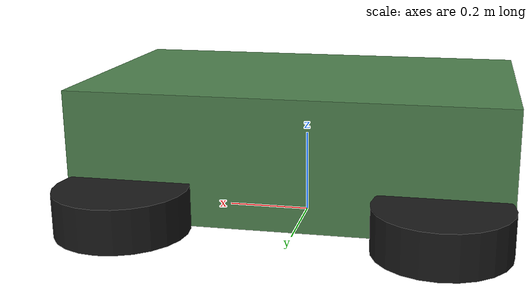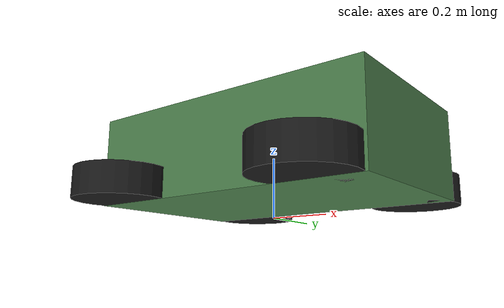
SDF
<?xml version="1.0" ?>
<sdf version="1.6">
  <model name="ugv_rover">
    <static>false</static>

    <link name="chassis">
      <pose>0 0 0.2 0 0 0</pose>
      <inertial>
        <mass>20</mass>
        <inertia>
          <ixx>0.834</ixx>
          <iyy>1.667</iyy>
          <izz>2.5</izz>
        </inertia>
      </inertial>

      <visual name="chassis_visual">
        <geometry>
          <box>
            <size>1.0 0.6 0.3</size>
          </box>
        </geometry>
        <material>
          <ambient>0.3 0.5 0.3 1</ambient>
          <diffuse>0.3 0.5 0.3 1</diffuse>
        </material>
      </visual>

      <collision name="chassis_collision">
        <geometry>
          <box>
            <size>1.0 0.6 0.3</size>
          </box>
        </geometry>
      </collision>

      <!-- IMU -->
      <sensor name="imu_sensor" type="imu">
        <always_on>true</always_on>
        <update_rate>100</update_rate>
        <plugin filename="libgazebo_ros_imu_sensor.so" name="imu_plugin">
          <robotNamespace>/ugv</robotNamespace>
          <topicName>imu/data</topicName>
        </plugin>
      </sensor>

      <!-- GPS -->
      <sensor name="gps" type="gps">
        <always_on>true</always_on>
        <update_rate>10</update_rate>
        <plugin filename="libgazebo_ros_gps_sensor.so" name="gps_plugin">
          <robotNamespace>/ugv</robotNamespace>
          <topicName>gps/fix</topicName>
        </plugin>
      </sensor>

      <!-- 2D Lidar -->
      <sensor name="lidar_2d" type="ray">
        <pose>0.5 0 0.1 0 0 0</pose>
        <ray>
          <scan>
            <horizontal>
              <samples>720</samples>
              <resolution>1</resolution>
              <min_angle>-3.14159</min_angle>
              <max_angle>3.14159</max_angle>
            </horizontal>
          </scan>
          <range>
            <min>0.15</min>
            <max>30</max>
            <resolution>0.01</resolution>
          </range>
        </ray>
        <always_on>true</always_on>
        <update_rate>20</update_rate>
        <plugin filename="libgazebo_ros_laser.so" name="lidar_plugin">
          <robotNamespace>/ugv</robotNamespace>
          <topicName>scan</topicName>
          <frameName>laser_link</frameName>
        </plugin>
      </sensor>

      <!-- RGB-D Camera -->
      <sensor name="rgbd_camera" type="depth">
        <pose>0.4 0 0.2 0 0 0</pose>
        <camera>
          <horizontal_fov>1.047</horizontal_fov>
          <image>
            <width>640</width>
            <height>480</height>
          </image>
          <clip>
            <near>0.1</near>
            <far>10</far>
          </clip>
        </camera>
        <always_on>true</always_on>
        <update_rate>30</update_rate>
        <plugin filename="libgazebo_ros_open_kinect.so" name="kinect_plugin">
          <robotNamespace>/ugv</robotNamespace>
          <cameraName>rgbd</cameraName>
          <imageTopicName>color/image_raw</imageTopicName>
          <depthImageTopicName>depth/image_raw</depthImageTopicName>
          <pointCloudTopicName>depth/color/points</pointCloudTopicName>
          <frameName>camera_link</frameName>
        </plugin>
      </sensor>

      <!-- Bumper sensors -->
      <sensor name="front_bumper" type="contact">
        <pose>0.5 0 0 0 0 0</pose>
        <contact>
          <collision>chassis_collision</collision>
        </contact>
        <plugin filename="libgazebo_ros_bumper.so" name="bumper_plugin">
          <robotNamespace>/ugv</robotNamespace>
          <topicName>bumper/front</topicName>
        </plugin>
      </sensor>
    </link>

    <!-- Front Left Wheel -->
    <link name="front_left_wheel">
      <pose>0.35 0.35 0.1 0 0 0</pose>
      <inertial>
        <mass>2</mass>
        <inertia>
          <ixx>0.004</ixx>
          <iyy>0.004</iyy>
          <izz>0.008</izz>
        </inertia>
      </inertial>
      <visual name="visual">
        <geometry>
          <cylinder>
            <radius>0.15</radius>
            <length>0.1</length>
          </cylinder>
        </geometry>
        <material>
          <ambient>0.1 0.1 0.1 1</ambient>
        </material>
      </visual>
      <collision name="collision">
        <geometry>
          <cylinder>
            <radius>0.15</radius>
            <length>0.1</length>
          </cylinder>
        </geometry>
        <surface>
          <friction>
            <ode>
              <mu>1.0</mu>
              <mu2>1.0</mu2>
            </ode>
          </friction>
        </surface>
      </collision>
    </link>
    <joint name="front_left_wheel_joint" type="revolute">
      <parent>chassis</parent>
      <child>front_left_wheel</child>
      <axis>
        <xyz>0 1 0</xyz>
      </axis>
    </joint>

    <!-- Front Right Wheel -->
    <link name="front_right_wheel">
      <pose>0.35 -0.35 0.1 0 0 0</pose>
      <inertial>
        <mass>2</mass>
        <inertia>
          <ixx>0.004</ixx>
          <iyy>0.004</iyy>
          <izz>0.008</izz>
        </inertia>
      </inertial>
      <visual name="visual">
        <geometry>
          <cylinder>
            <radius>0.15</radius>
            <length>0.1</length>
          </cylinder>
        </geometry>
        <material>
          <ambient>0.1 0.1 0.1 1</ambient>
        </material>
      </visual>
      <collision name="collision">
        <geometry>
          <cylinder>
            <radius>0.15</radius>
            <length>0.1</length>
          </cylinder>
        </geometry>
        <surface>
          <friction>
            <ode>
              <mu>1.0</mu>
              <mu2>1.0</mu2>
            </ode>
          </friction>
        </surface>
      </collision>
    </link>
    <joint name="front_right_wheel_joint" type="revolute">
      <parent>chassis</parent>
      <child>front_right_wheel</child>
      <axis>
        <xyz>0 1 0</xyz>
      </axis>
    </joint>

    <!-- Rear Left Wheel -->
    <link name="rear_left_wheel">
      <pose>-0.35 0.35 0.1 0 0 0</pose>
      <inertial>
        <mass>2</mass>
        <inertia>
          <ixx>0.004</ixx>
          <iyy>0.004</iyy>
          <izz>0.008</izz>
        </inertia>
      </inertial>
      <visual name="visual">
        <geometry>
          <cylinder>
            <radius>0.15</radius>
            <length>0.1</length>
          </cylinder>
        </geometry>
        <material>
          <ambient>0.1 0.1 0.1 1</ambient>
        </material>
      </visual>
      <collision name="collision">
        <geometry>
          <cylinder>
            <radius>0.15</radius>
            <length>0.1</length>
          </cylinder>
        </geometry>
      </collision>
    </link>
    <joint name="rear_left_wheel_joint" type="revolute">
      <parent>chassis</parent>
      <child>rear_left_wheel</child>
      <axis>
        <xyz>0 1 0</xyz>
      </axis>
    </joint>

    <!-- Rear Right Wheel -->
    <link name="rear_right_wheel">
      <pose>-0.35 -0.35 0.1 0 0 0</pose>
      <inertial>
        <mass>2</mass>
        <inertia>
          <ixx>0.004</ixx>
          <iyy>0.004</iyy>
          <izz>0.008</izz>
        </inertia>
      </inertial>
      <visual name="visual">
        <geometry>
          <cylinder>
            <radius>0.15</radius>
            <length>0.1</length>
          </cylinder>
        </geometry>
        <material>
          <ambient>0.1 0.1 0.1 1</ambient>
        </material>
      </visual>
      <collision name="collision">
        <geometry>
          <cylinder>
            <radius>0.15</radius>
            <length>0.1</length>
          </cylinder>
        </geometry>
      </collision>
    </link>
    <joint name="rear_right_wheel_joint" type="revolute">
      <parent>chassis</parent>
      <child>rear_right_wheel</child>
      <axis>
        <xyz>0 1 0</xyz>
      </axis>
    </joint>

    <!-- ROS2 Control Plugin -->
    <plugin filename="libgazebo_ros2_control.so" name="gazebo_ros2_control">
      <parameters>$(find test_simulation)/config/ugv_controllers.yaml</parameters>
    </plugin>
  </model>
</sdf>
